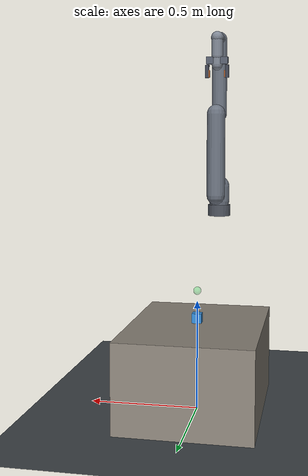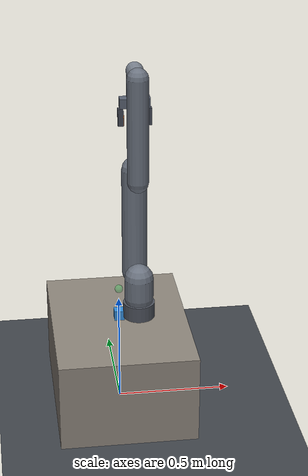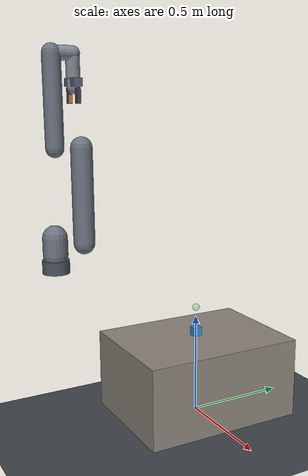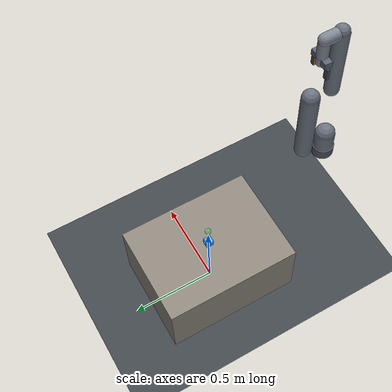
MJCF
<mujoco model="grasp_cell">
  <compiler angle="radian" autolimits="true"/>

  <option timestep="0.002" integrator="implicitfast" cone="elliptic" impratio="30"
          gravity="0 0 -9.81"/>

  <visual>
    <headlight diffuse="0.6 0.6 0.6" ambient="0.3 0.3 0.3" specular="0 0 0"/>
    <rgba haze="0.15 0.25 0.35 1"/>
    <global azimuth="140" elevation="-25" offwidth="640" offheight="480"/>
  </visual>

  <default>
    <geom solimp="0.95 0.99 0.001" solref="0.005 1"/>
    <default class="finger">
      <geom type="box" size="0.010 0.009 0.033" condim="4" friction="1.2 0.05 0.0005"
            rgba="0.25 0.27 0.32 1" mass="0.02"/>
    </default>
    <default class="pad">
      <geom type="box" size="0.002 0.009 0.018" condim="4" friction="0.05 0.10 0.002"
            solimp="0.92 0.97 0.002" solref="0.008 1" rgba="0.85 0.45 0.20 1" mass="0.005"/>
    </default>
  </default>

  <asset>
    <texture name="skybox" type="skybox" builtin="gradient" rgb1="0.35 0.45 0.55"
             rgb2="0.05 0.07 0.10" width="256" height="256"/>
    <texture name="grid" type="2d" builtin="checker" rgb1="0.22 0.24 0.26"
             rgb2="0.28 0.30 0.32" width="300" height="300"/>
    <material name="grid" texture="grid" texrepeat="6 6" reflectance="0.05"/>
    <material name="table" rgba="0.55 0.52 0.48 1" reflectance="0.02"/>
    <material name="object" rgba="0.20 0.55 0.85 1"/>
  </asset>

  <worldbody>
    <light name="key" pos="0.4 -0.4 1.6" dir="-0.3 0.3 -1" directional="true"/>
    <geom name="floor" type="plane" size="2 2 0.05" material="grid"/>

    <!-- Table: top face at z = 0.40 -->
    <body name="table" pos="0 0 0.20">
      <geom name="table_top" type="box" size="0.30 0.40 0.20" material="table"
            friction="0.8 0.02 0.0002" condim="4"/>
    </body>

    <body name="base" pos="0 -0.72 0.85">
      <geom name="base" type="cylinder" size="0.06 0.03" rgba="0.30 0.32 0.36 1" mass="4.0"/>
      <body name="shoulder" pos="0 0 0.089">
        <joint name="j1" type="hinge" axis="0 0 1" range="-3.14 3.14" damping="20" armature="0.1"/>
        <geom name="l1" type="capsule" fromto="0 0 -0.04 0 0 0.04" size="0.055"
              rgba="0.42 0.45 0.50 1" mass="3.7"/>
        <body name="upper" pos="0 0.136 0">
          <joint name="j2" type="hinge" axis="1 0 0" range="-2.9 0.35" damping="20" armature="0.1"/>
          <geom name="l2" type="capsule" fromto="0 0 0 0 0 0.425" size="0.048"
                rgba="0.42 0.45 0.50 1" mass="8.4"/>
          <body name="fore" pos="0 -0.120 0.425">
            <joint name="j3" type="hinge" axis="1 0 0" range="-2.9 2.9" damping="15" armature="0.08"/>
            <geom name="l3" type="capsule" fromto="0 0 0 0 0 0.392" size="0.040"
                  rgba="0.42 0.45 0.50 1" mass="2.3"/>
            <body name="wrist1" pos="0 0 0.392">
              <joint name="j4" type="hinge" axis="1 0 0" range="-3.14 3.14" damping="6" armature="0.02"/>
              <geom name="l4" type="capsule" fromto="0 0 0 0 0.093 0" size="0.032"
                    rgba="0.50 0.53 0.58 1" mass="1.2"/>
              <body name="wrist2" pos="0 0.093 0">
                <joint name="j5" type="hinge" axis="0 0 1" range="-3.14 3.14" damping="5" armature="0.02"/>
                <geom name="l5" type="capsule" fromto="0 0 0 0 0 -0.095" size="0.030"
                      rgba="0.50 0.53 0.58 1" mass="1.2"/>
                <body name="wrist3" pos="0 0 -0.095">
                  <joint name="j6" type="hinge" axis="1 0 0" range="-3.14 3.14" damping="4" armature="0.015"/>
                  <geom name="l6" type="capsule" fromto="0 0 0 0 0 -0.045" size="0.028"
                        rgba="0.50 0.53 0.58 1" mass="0.35"/>
                  <site name="flange" pos="0 0 -0.045" size="0.004" rgba="0 1 1 0.0"/>
                  <body name="hand" pos="0 0 -0.045">
                        <inertial pos="0 0 0" mass="0.6" diaginertia="0.002 0.002 0.002"/>
                        <geom name="palm" type="box" size="0.056 0.020 0.018" pos="0 0 0.022"
                              rgba="0.35 0.38 0.44 1" mass="0.3" contype="1" conaffinity="1"/>
                        <site name="grip_site" pos="0 0 -0.046" size="0.005" rgba="1 0 0 0.0"/>

                        <body name="left_finger" pos="-0.052 0 -0.033">
                          <joint name="left_slide" type="slide" axis="1 0 0" range="0 0.040"
                                 damping="8" armature="0.002"/>
                          <geom name="left_finger" class="finger"/>
                          <geom name="left_pad" class="pad" pos="0.011 0 -0.013"/>
                        </body>

                        <body name="right_finger" pos="0.052 0 -0.033">
                          <joint name="right_slide" type="slide" axis="-1 0 0" range="0 0.040"
                                 damping="8" armature="0.002"/>
                          <geom name="right_finger" class="finger"/>
                          <geom name="right_pad" class="pad" pos="-0.011 0 -0.013"/>
                        </body>
                      </body>
                </body>
              </body>
            </body>
          </body>
        </body>
      </body>
    </body>

    <!-- Object to grasp. Size, mass and friction are overwritten at reset by
         the domain randomiser; the values here are the nominal ones. -->
    <body name="object" pos="0 0 0.425">
      <freejoint name="object_free"/>
      <geom name="object" type="box" size="0.022 0.022 0.022" material="object"
            mass="0.08" friction="1.0 0.05 0.0005" condim="4"/>
    </body>

    <!-- Goal marker, moved at reset. Visual only. -->
    <site name="goal" pos="0 0 0.55" type="sphere" size="0.018"
          rgba="0.20 0.85 0.35 0.35"/>

    <!-- Both cameras are aimed at (0, 0, 0.50), the middle of the volume the
         hand actually works in. Framed tight enough that a 44 mm box is
         legible in a 320-pixel-wide GIF. -->
    <camera name="scene_cam" pos="0.62 -0.62 0.78" xyaxes="0.707 0.707 0 -0.215 0.215 0.953"/>
    <camera name="front_cam" pos="0 -0.70 0.60" xyaxes="1 0 0 0 0.158 0.988"/>
  </worldbody>

  <equality>
    <!-- Drags the hand to the commanded mocap pose. solref is soft enough that
         contact forces can visibly resist the command. -->
  </equality>

  <contact>
    <exclude body1="base" body2="shoulder"/>
    <exclude body1="shoulder" body2="upper"/>
    <exclude body1="upper" body2="fore"/>
    <exclude body1="fore" body2="wrist1"/>
    <exclude body1="wrist1" body2="wrist2"/>
    <exclude body1="wrist2" body2="wrist3"/>
    <exclude body1="wrist3" body2="hand"/>
  </contact>

  <actuator>
    <position name="a1" joint="j1" kp="2000" ctrlrange="-3.14 3.14" forcerange="-330 330"/>
    <position name="a2" joint="j2" kp="3000" ctrlrange="-2.9 0.35" forcerange="-330 330"/>
    <position name="a3" joint="j3" kp="2000" ctrlrange="-2.9 2.9" forcerange="-150 150"/>
    <position name="a4" joint="j4" kp="500" ctrlrange="-3.14 3.14" forcerange="-54 54"/>
    <position name="a5" joint="j5" kp="500" ctrlrange="-3.14 3.14" forcerange="-54 54"/>
    <position name="a6" joint="j6" kp="300" ctrlrange="-3.14 3.14" forcerange="-54 54"/>
    <position name="left_drive"  joint="left_slide"  kp="300" ctrlrange="0 0.040" forcerange="-60 60"/>
    <position name="right_drive" joint="right_slide" kp="300" ctrlrange="0 0.040" forcerange="-60 60"/>
  </actuator>

  <sensor>
    <framepos name="grip_pos" objtype="site" objname="grip_site"/>
    <framepos name="object_pos" objtype="body" objname="object"/>
  </sensor>
</mujoco>
